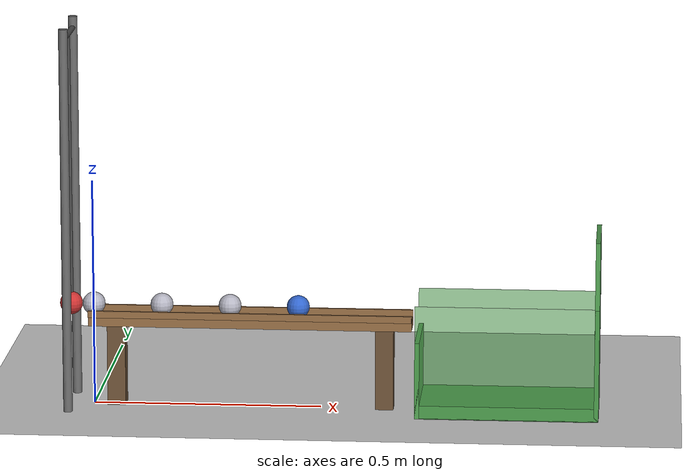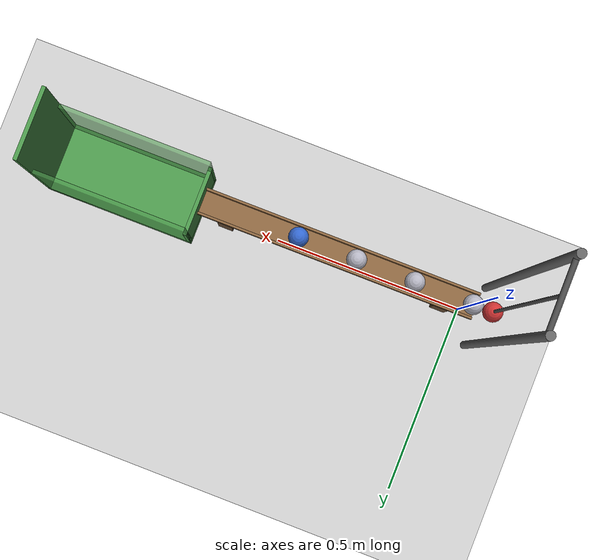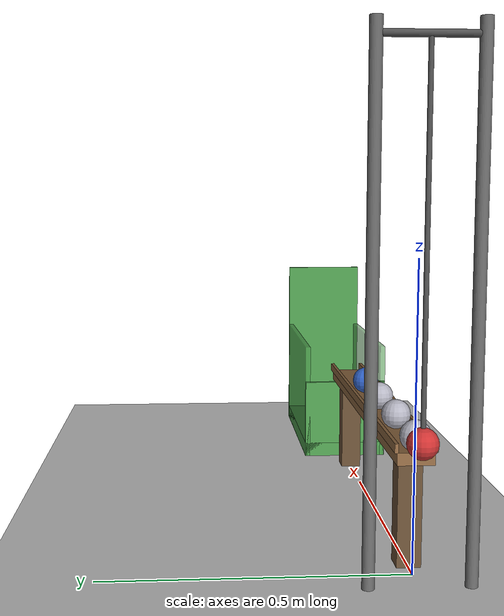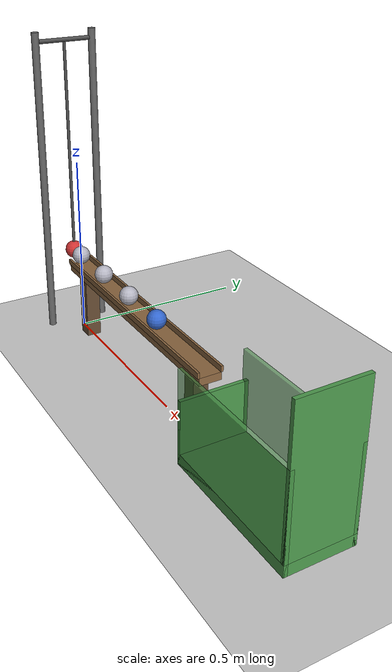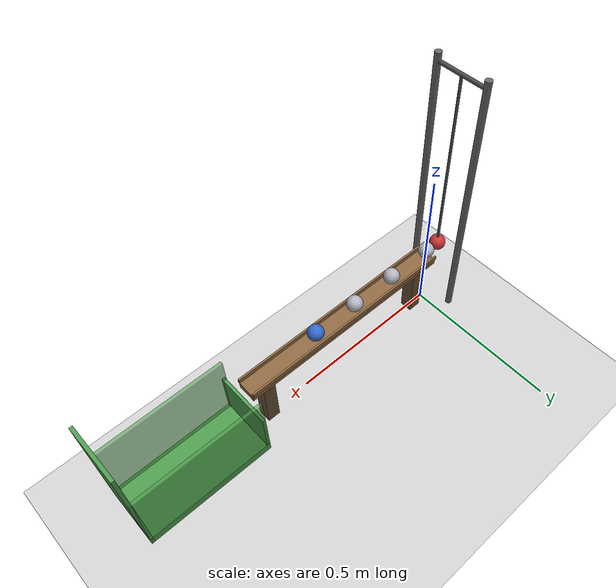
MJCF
<mujoco model="pendulum_ball_chain">
  <option timestep="0.002" gravity="0 0 -9.81"/>
  <visual>
    <global offwidth="1280" offheight="720"/>
  </visual>
  <worldbody>
    <light name="sun" pos="0.3 -1 2.5" dir="0 0.4 -1" diffuse="0.9 0.9 0.9"/>
    <geom name="floor" type="plane" size="3 3 0.1" rgba="0.8 0.8 0.8 1" solmix="100"/>

    <geom name="stand_post_left" type="cylinder" fromto="-0.05 0.08 0 -0.05 0.08 0.85" size="0.01" rgba="0.4 0.4 0.4 1" contype="0" conaffinity="0"/>
    <geom name="stand_post_right" type="cylinder" fromto="-0.05 -0.08 0 -0.05 -0.08 0.85" size="0.01" rgba="0.4 0.4 0.4 1" contype="0" conaffinity="0"/>
    <geom name="stand_axle" type="cylinder" fromto="-0.05 -0.08 0.825 -0.05 0.08 0.825" size="0.006" rgba="0.3 0.3 0.3 1" contype="0" conaffinity="0"/>

    <body name="pendulum" pos="-0.05 0 0.825">
      <joint name="pendulum_hinge" type="hinge" axis="0 1 0" pos="0 0 0"/>
      <geom name="pendulum_rod" type="capsule" fromto="0 0 0 0 0 -0.575" size="0.004" mass="0.001" rgba="0.3 0.3 0.3 1" contype="2" conaffinity="2"/>
      <geom name="pendulum_bob" type="sphere" pos="0 0 -0.6" size="0.025" density="7800" friction="0.3 0.005 0.0001" solref="0.006 0.05" solmix="1" contype="2" conaffinity="2" rgba="0.8 0.2 0.2 1"/>
    </body>

    <body name="ball1" pos="0 0 0.225">
      <freejoint name="ball1_free"/>
      <geom name="ball1_geom" type="sphere" size="0.025" density="7800" friction="0.3 0.005 0.0001" solref="0.006 0.05" solmix="1" contype="3" conaffinity="3" rgba="0.7 0.7 0.75 1"/>
    </body>
    <body name="ball2" pos="0.15 0 0.225">
      <freejoint name="ball2_free"/>
      <geom name="ball2_geom" type="sphere" size="0.025" density="7800" friction="0.3 0.005 0.0001" solref="0.006 0.05" solmix="1" contype="3" conaffinity="3" rgba="0.7 0.7 0.75 1"/>
    </body>
    <body name="ball3" pos="0.30 0 0.225">
      <freejoint name="ball3_free"/>
      <geom name="ball3_geom" type="sphere" size="0.025" density="7800" friction="0.3 0.005 0.0001" solref="0.006 0.05" solmix="1" contype="3" conaffinity="3" rgba="0.7 0.7 0.75 1"/>
    </body>
    <body name="ball4" pos="0.45 0 0.225">
      <freejoint name="ball4_free"/>
      <geom name="ball4_geom" type="sphere" size="0.025" density="7800" friction="0.3 0.005 0.0001" solref="0.006 0.05" solmix="1" contype="3" conaffinity="3" rgba="0.2 0.4 0.8 1"/>
    </body>

    <body name="rail" pos="0 0 0">
      <geom name="rail_plank" type="box" pos="0.345 0 0.19" size="0.355 0.03 0.01" condim="6" friction="1 0.005 0.005" solref="0.02 1" solmix="100" rgba="0.55 0.4 0.25 1"/>
      <geom name="rail_lip_left" type="box" pos="0.345 0.031 0.2075" size="0.355 0.003 0.0075" condim="6" friction="1 0.005 0.005" solref="0.02 1" solmix="100" rgba="0.55 0.4 0.25 1"/>
      <geom name="rail_lip_right" type="box" pos="0.345 -0.031 0.2075" size="0.355 0.003 0.0075" condim="6" friction="1 0.005 0.005" solref="0.02 1" solmix="100" rgba="0.55 0.4 0.25 1"/>
      <geom name="rail_post_a" type="box" pos="0.05 0 0.09" size="0.02 0.02 0.09" rgba="0.4 0.3 0.2 1"/>
      <geom name="rail_post_b" type="box" pos="0.64 0 0.09" size="0.02 0.02 0.09" rgba="0.4 0.3 0.2 1"/>
    </body>

    <body name="box" pos="0 0 0">
      <geom name="box_floor" type="box" pos="0.91 0 0.015" size="0.2 0.09 0.015" condim="6" friction="1 0.01 0.01" solref="0.02 1" solmix="100" rgba="0.3 0.6 0.3 1"/>
      <geom name="box_wall_near" type="box" pos="0.715 0 0.085" size="0.005 0.09 0.085" condim="6" friction="1 0.01 0.01" solref="0.02 1" solmix="100" rgba="0.3 0.6 0.3 1"/>
      <geom name="box_wall_far" type="box" pos="1.105 0 0.2" size="0.005 0.09 0.2" condim="6" friction="1 0.01 0.01" solref="0.02 1" solmix="100" rgba="0.3 0.6 0.3 1"/>
      <geom name="box_wall_left" type="box" pos="0.91 0.085 0.125" size="0.2 0.005 0.125" condim="6" friction="1 0.01 0.01" solref="0.02 1" solmix="100" rgba="0.3 0.6 0.3 0.6"/>
      <geom name="box_wall_right" type="box" pos="0.91 -0.085 0.125" size="0.2 0.005 0.125" condim="6" friction="1 0.01 0.01" solref="0.02 1" solmix="100" rgba="0.3 0.6 0.3 0.6"/>
    </body>
  </worldbody>

  <keyframe>
    <key name="start" qpos="1.40335 0 0 0.225 1 0 0 0 0.15 0 0.225 1 0 0 0 0.30 0 0.225 1 0 0 0 0.45 0 0.225 1 0 0 0"/>
  </keyframe>
</mujoco>
